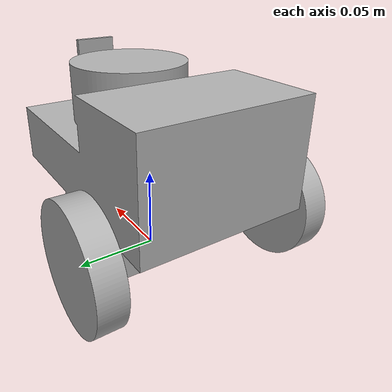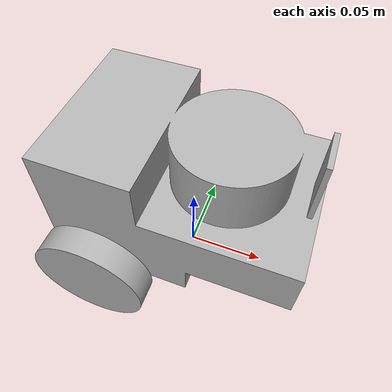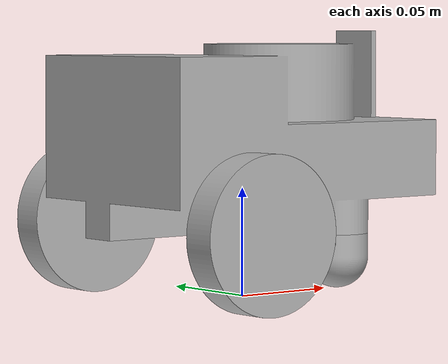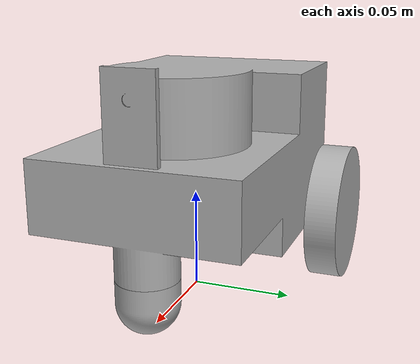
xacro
<?xml version="1.0" ?>
<robot xmlns:xacro="http://www.ros.org/wiki/xacro">

<xacro:include filename="$(find myrt_robot)/description/materials.xacro" />

<xacro:property name="wheel_radius" value="0.035"/>
<xacro:property name="wheel_thickness" value="0.02"/>
<xacro:property name="wheel_mass" value="0.2"/>
<xacro:property name="caster_wheel_radius" value="0.026141"/>
<xacro:property name="caster_wheel_mass" value="0.1"/>

<joint name="base_footprint_joint" type="fixed">
  <parent link="base_link"/>
  <child link="base_footprint"/>
  <origin xyz="0 0 0" rpy="0 0 0"/>
</joint>

<link name="base_footprint">
</link>

<link name="base_link">
  <inertial>
    <origin xyz="-0.005628890071166558 -1.932837370238976e-10 0.07346730552183806" rpy="0 0 0"/>
    <mass value="1.5"/>
    <inertia ixx="0.008772" iyy="0.015591" izz="0.01802" ixy="-0.0" iyz="0.0" ixz="0.000755"/>
  </inertial>
  <visual>
    <origin xyz="0 0 0" rpy="0 0 0"/>
    <geometry>
      <mesh filename="file://$(find myrt_robot)/meshes/base_link.stl" scale="0.001 0.001 0.001"/>
    </geometry>
    <material name="silver"/>
  </visual>
  <collision>
    <origin xyz="0 0 0" rpy="0 0 0"/>
    <geometry>
      <mesh filename="file://$(find myrt_robot)/meshes/base_link.stl" scale="0.001 0.001 0.001"/>
    </geometry>
  </collision>
</link>

<gazebo reference="base_link">
  <material>Gazebo/White</material>
</gazebo>

<link name="left_wheel_1">
  <inertial>
    <origin xyz="4.499476740082997e-07 0.014071170243280452 3.6959849514933696e-07" rpy="0 0 0"/>
    <mass value="0.2"/>
    <inertia ixx="0.000159" iyy="0.000296" izz="0.000159" ixy="0.0" iyz="0.0" ixz="-0.0"/>
  </inertial>
  <visual>
    <origin xyz="0.041219 -0.049729 -0.035" rpy="0 0 0"/>
    <geometry>
      <mesh filename="file://$(find myrt_robot)/meshes/left_wheel_1.stl" scale="0.001 0.001 0.001"/>
    </geometry>
    <material name="silver"/>
  </visual>
  <collision>
    <geometry>
        <sphere radius="${wheel_radius}"/>
    </geometry>
  </collision>
</link>

<gazebo reference="left_wheel_1">
  <material>Gazebo/Black</material>
  </gazebo>

<link name="right_wheel_1">
  <inertial>
    <origin xyz="4.499476711980477e-07 -0.014071170243280452 3.6959849514933696e-07" rpy="0 0 0"/>
    <mass value="0.2"/>
    <inertia ixx="0.000159" iyy="0.000296" izz="0.000159" ixy="0.0" iyz="0.0" ixz="-0.0"/>
  </inertial>
  <visual>
    <origin xyz="0.041219 0.049729 -0.035" rpy="0 0 0"/>
    <geometry>
      <mesh filename="file://$(find myrt_robot)/meshes/right_wheel_1.stl" scale="0.001 0.001 0.001"/>
    </geometry>
    <material name="silver"/>
  </visual>
  <collision>
    <geometry>
        <sphere radius="${wheel_radius}"/>
    </geometry>
  </collision>
</link>

<link name="castor_1">
  <inertial>
    <origin xyz="9.095440359901952e-08 0.0 -0.01086613407596613" rpy="0 0 0"/>
    <mass value="0.1173079846739032"/>
    <inertia ixx="1.1e-05" iyy="1.1e-05" izz="1.2e-05" ixy="0.0" iyz="-0.0" ixz="-0.0"/>
  </inertial>
  <visual>
    <origin xyz="-0.057955 -0.0 -0.026141" rpy="0 0 0"/>
    <geometry>
      <mesh filename="file://$(find myrt_robot)/meshes/castor_1.stl" scale="0.001 0.001 0.001"/>
    </geometry>
    <material name="silver"/>
  </visual>
  <collision>
    <origin xyz="-0.057955 -0.0 -0.026141" rpy="0 0 0"/>
    <geometry>
      <mesh filename="file://$(find myrt_robot)/meshes/castor_1.stl" scale="0.001 0.001 0.001"/>
    </geometry>
  </collision>
</link>

<gazebo reference="castor_1">
  <material>Gazebo/Black</material>
  <mu1 value="0.001"/>
  <mu2 value="0.001"/>
  </gazebo>

<joint name="left_wheel_joint" type="continuous">
  <origin xyz="-0.041219 0.049729 0.035" rpy="0 0 0"/>
  <parent link="base_link"/>
  <child link="left_wheel_1"/>
  <axis xyz="0.0 1.0 0.0"/>
</joint>

<joint name="right_wheel_joint" type="continuous">
  <origin xyz="-0.041219 -0.049729 0.035" rpy="0 0 0"/>
  <parent link="base_link"/>
  <child link="right_wheel_1"/>
  <axis xyz="0.0 1.0 0.0"/>
</joint>

<joint name="castor_joint" type="fixed">
  <origin xyz="0.057955 0.0 0.026141" rpy="0 0 0"/>
  <parent link="base_link"/>
  <child link="castor_1"/>
</joint>

</robot>

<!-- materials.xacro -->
<robot xmlns:xacro="http://www.ros.org/wiki/xacro" >

  <material name="silver">
    <color rgba="0.700 0.700 0.700 1.000"/>
  </material>

  <material name="black">
    <color rgba="0 0 0 1"/>
  </material>

  <material name="red">
    <color rgba="1 0 0 1"/>
  </material>

  <material name="white">
    <color rgba="1 1 1 1" />
  </material>

</robot>
